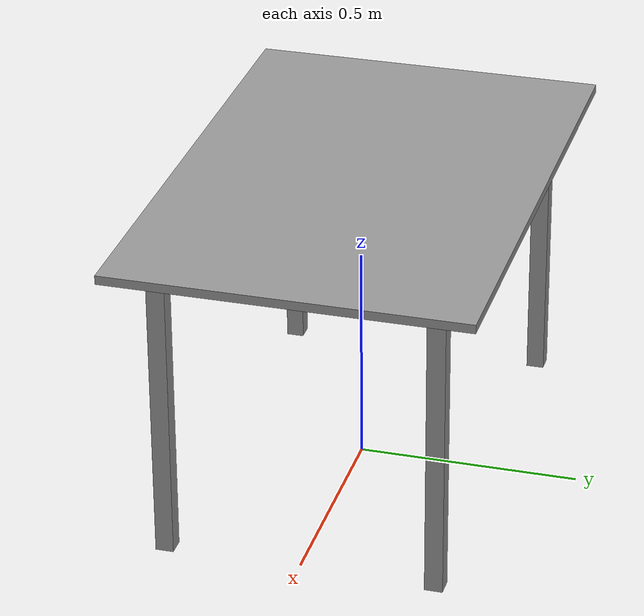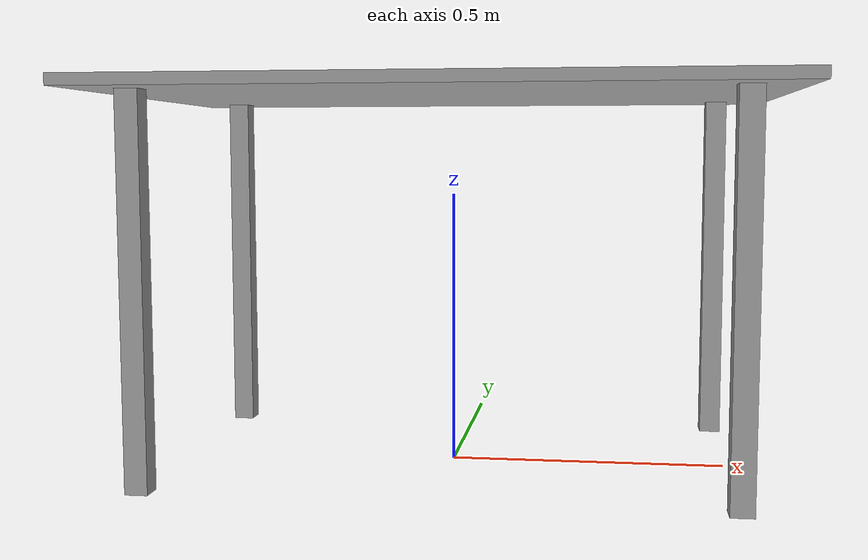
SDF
<?xml version="1.0"?>
<sdf version="1.6">
  <model name="ur_base">
    <static>true</static>

    <link name="top_plate">
      <pose>0 0 0.69 0 0 0</pose>
      <collision name="top_plate_collision">
        <geometry>
          <box>
            <size>1.2 0.8 0.02</size>
          </box>
        </geometry>
        <surface>
          <friction>
            <ode>
              <mu>1</mu>
              <mu2>1</mu2>
              <fdir1>0 0 0</fdir1>
              <slip1>0</slip1>
              <slip2>0</slip2>
            </ode>
            <torsional>
              <coefficient>1</coefficient>
              <patch_radius>0</patch_radius>
              <surface_radius>0</surface_radius>
              <use_patch_radius>1</use_patch_radius>
              <ode>
                <slip>0</slip>
              </ode>
            </torsional>
          </friction>
          <bounce>
            <restitution_coefficient>0</restitution_coefficient>
            <threshold>1e+06</threshold>
          </bounce>
          <contact>
            <collide_without_contact>0</collide_without_contact>
            <collide_without_contact_bitmask>1</collide_without_contact_bitmask>
            <collide_bitmask>0x01</collide_bitmask>
            <ode>
              <soft_cfm>0</soft_cfm>
              <soft_erp>0.2</soft_erp>
              <kp>1e+13</kp>
              <kd>1</kd>
              <max_vel>0.01</max_vel>
              <min_depth>0</min_depth>
            </ode>
          </contact>
        </surface>
      </collision>
      <visual name="top_plate_visual">
        <geometry>
          <box>
            <size>1.2 0.8 0.02</size>
          </box>
        </geometry>
        <material>
          <script>
            <uri>model://media/materials/scripts/gazebo.material</uri>
            <name>Gazebo/Grey</name>
          </script>
        </material>
      </visual>
    </link>
    <link name="leg1">
      <pose>0.5 0.3 0.34 0 0 0</pose>
      <visual name="leg1_visual">
        <geometry>
          <box>
            <size>0.04 0.04 0.68</size>
          </box>
        </geometry>
        <material>
          <script>
            <uri>model://media/materials/scripts/gazebo.material</uri>
            <name>Gazebo/Grey</name>
          </script>
        </material>
      </visual>
    </link>
    <link name="leg2">
      <pose>-0.5 0.3 0.34 0 0 0</pose>
      <visual name="leg2_visual">
        <geometry>
          <box>
            <size>0.04 0.04 0.68</size>
          </box>
        </geometry>
        <material>
          <script>
            <uri>model://media/materials/scripts/gazebo.material</uri>
            <name>Gazebo/Grey</name>
          </script>
        </material>
      </visual>
    </link>
    <link name="leg3">
      <pose>0.5 -0.3 0.34 0 0 0</pose>
      <visual name="leg3_visual">
        <geometry>
          <box>
            <size>0.04 0.04 0.68</size>
          </box>
        </geometry>
        <material>
          <script>
            <uri>model://media/materials/scripts/gazebo.material</uri>
            <name>Gazebo/Grey</name>
          </script>
        </material>
      </visual>
    </link>
    <link name="leg4">
      <pose>-0.5 -0.3 0.34 0 0 0</pose>
      <visual name="leg4_visual">
        <geometry>
          <box>
            <size>0.04 0.04 0.68</size>
          </box>
        </geometry>
        <material>
          <script>
            <uri>model://media/materials/scripts/gazebo.material</uri>
            <name>Gazebo/Grey</name>
          </script>
        </material>
      </visual>
    </link>
  </model>
</sdf>
